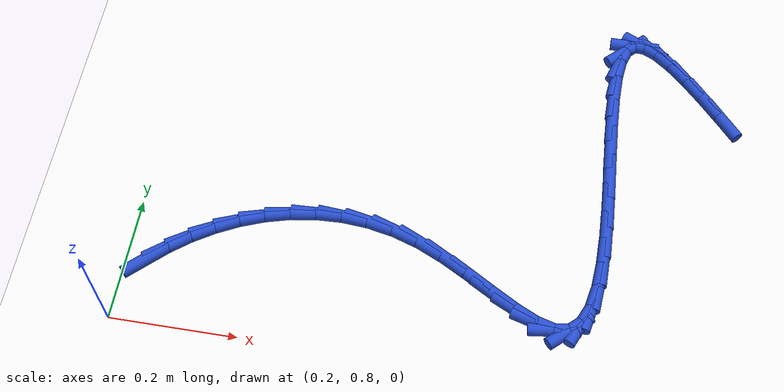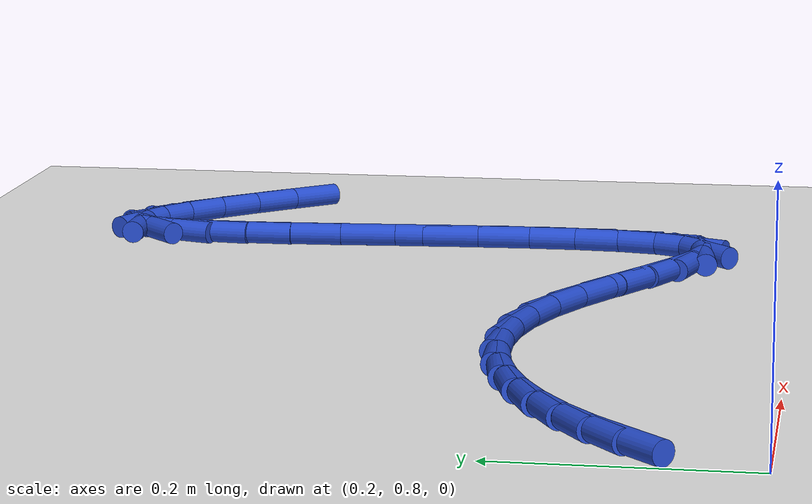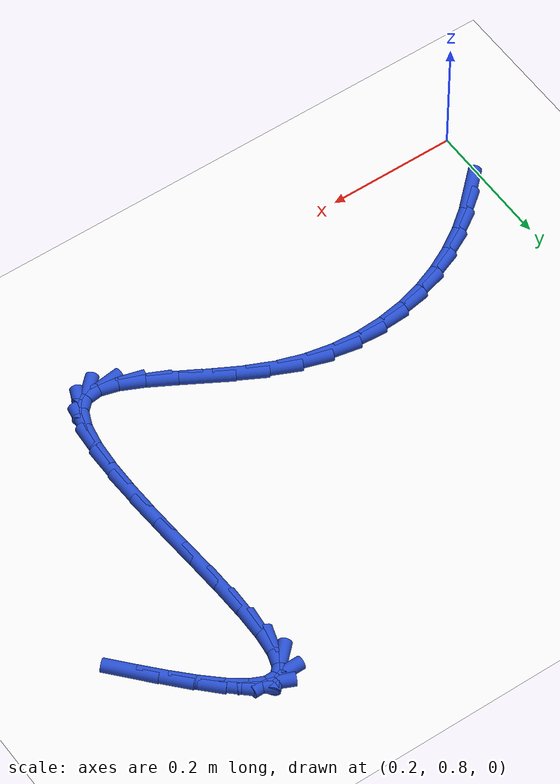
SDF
<sdf version="1.6">
 <world name="default">
  <model name="ground_plane">
   <static>1</static>
   <link name="link">
    <collision name="collision">
     <geometry><plane><normal>0 0 1</normal><size>100 100</size></plane></geometry>
     <surface><friction><ode><mu>100</mu><mu2>50</mu2></ode></friction></surface>
    </collision>
    <visual name="visual">
     <cast_shadows>0</cast_shadows>
     <geometry><plane><normal>0 0 1</normal><size>100 100</size></plane></geometry>
     <material>
      <script><uri>file://media/materials/scripts/gazebo.material</uri><name>Gazebo/WhiteGlow</name></script>
     </material>
    </visual>
   </link>
  </model>
  <model name="line">
   <link name="link_24">
    <pose>0.23262745834387805 0.8998733901806598 0.01 0 1.57 0.7599669564312679</pose>
    <collision name="collision">
     <geometry><cylinder><radius>0.01</radius><length>0.08</length></cylinder></geometry>
    </collision>
    <visual name="visual">
     <material>
      <script><name>Gazebo/Blue</name><uri>file://media/materials/scripts/gazebo.material</uri></script>
     </material>
     <geometry><cylinder><radius>0.01</radius><length>0.08</length></cylinder></geometry>
    </visual>
   </link>
   <link name="link_25">
    <pose>0.2601096772268201 0.9259921768534706 0.01 0 1.57 0.6659326873562499</pose>
    <collision name="collision">
     <geometry><cylinder><radius>0.01</radius><length>0.08</length></cylinder></geometry>
    </collision>
    <visual name="visual">
     <material>
      <script><name>Gazebo/Blue</name><uri>file://media/materials/scripts/gazebo.material</uri></script>
     </material>
     <geometry><cylinder><radius>0.01</radius><length>0.08</length></cylinder></geometry>
    </visual>
   </link>
   <link name="link_26">
    <pose>0.2904051819307278 0.9497939968531709 0.01 0 1.57 0.5713707651524974</pose>
    <collision name="collision">
     <geometry><cylinder><radius>0.01</radius><length>0.08</length></cylinder></geometry>
    </collision>
    <visual name="visual">
     <material>
      <script><name>Gazebo/Blue</name><uri>file://media/materials/scripts/gazebo.material</uri></script>
     </material>
     <geometry><cylinder><radius>0.01</radius><length>0.08</length></cylinder></geometry>
    </visual>
   </link>
   <link name="link_27">
    <pose>0.3232437256136845 0.970906034011327 0.01 0 1.57 0.4748559088709287</pose>
    <collision name="collision">
     <geometry><cylinder><radius>0.01</radius><length>0.08</length></cylinder></geometry>
    </collision>
    <visual name="visual">
     <material>
      <script><name>Gazebo/Blue</name><uri>file://media/materials/scripts/gazebo.material</uri></script>
     </material>
     <geometry><cylinder><radius>0.01</radius><length>0.08</length></cylinder></geometry>
    </visual>
   </link>
   <link name="link_28">
    <pose>0.3583370568904822 0.9889471621230053 0.01 0 1.57 0.3750314027690819</pose>
    <collision name="collision">
     <geometry><cylinder><radius>0.01</radius><length>0.08</length></cylinder></geometry>
    </collision>
    <visual name="visual">
     <material>
      <script><name>Gazebo/Blue</name><uri>file://media/materials/scripts/gazebo.material</uri></script>
     </material>
     <geometry><cylinder><radius>0.01</radius><length>0.08</length></cylinder></geometry>
    </visual>
   </link>
   <link name="link_29">
    <pose>0.3953969243759126 1.0035362549832727 0.01 0 1.57 0.27083501432303775</pose>
    <collision name="collision">
     <geometry><cylinder><radius>0.01</radius><length>0.08</length></cylinder></geometry>
    </collision>
    <visual name="visual">
     <material>
      <script><name>Gazebo/Blue</name><uri>file://media/materials/scripts/gazebo.material</uri></script>
     </material>
     <geometry><cylinder><radius>0.01</radius><length>0.08</length></cylinder></geometry>
    </visual>
   </link>
   <link name="link_30">
    <pose>0.43413507668476786 1.014292186387196 0.01 0 1.57 0.16159719585058546</pose>
    <collision name="collision">
     <geometry><cylinder><radius>0.01</radius><length>0.08</length></cylinder></geometry>
    </collision>
    <visual name="visual">
     <material>
      <script><name>Gazebo/Blue</name><uri>file://media/materials/scripts/gazebo.material</uri></script>
     </material>
     <geometry><cylinder><radius>0.01</radius><length>0.08</length></cylinder></geometry>
    </visual>
   </link>
   <link name="link_31">
    <pose>0.4742632624318398 1.0208338301298416 0.01 0 1.57 0.047169240069005365</pose>
    <collision name="collision">
     <geometry><cylinder><radius>0.01</radius><length>0.08</length></cylinder></geometry>
    </collision>
    <visual name="visual">
     <material>
      <script><name>Gazebo/Blue</name><uri>file://media/materials/scripts/gazebo.material</uri></script>
     </material>
     <geometry><cylinder><radius>0.01</radius><length>0.08</length></cylinder></geometry>
    </visual>
   </link>
   <link name="link_32">
    <pose>0.5154932302319205 1.0227800600062762 0.01 0 1.57 -0.07195117491863527</pose>
    <collision name="collision">
     <geometry><cylinder><radius>0.01</radius><length>0.08</length></cylinder></geometry>
    </collision>
    <visual name="visual">
     <material>
      <script><name>Gazebo/Blue</name><uri>file://media/materials/scripts/gazebo.material</uri></script>
     </material>
     <geometry><cylinder><radius>0.01</radius><length>0.08</length></cylinder></geometry>
    </visual>
   </link>
   <link name="link_33">
    <pose>0.5575367286998016 1.0197497498115666 0.01 0 1.57 -0.1945528694359533</pose>
    <collision name="collision">
     <geometry><cylinder><radius>0.01</radius><length>0.08</length></cylinder></geometry>
    </collision>
    <visual name="visual">
     <material>
      <script><name>Gazebo/Blue</name><uri>file://media/materials/scripts/gazebo.material</uri></script>
     </material>
     <geometry><cylinder><radius>0.01</radius><length>0.08</length></cylinder></geometry>
    </visual>
   </link>
   <link name="link_34">
    <pose>0.6001055064502753 1.0113617733407794 0.01 0 1.57 -0.3187642740556319</pose>
    <collision name="collision">
     <geometry><cylinder><radius>0.01</radius><length>0.08</length></cylinder></geometry>
    </collision>
    <visual name="visual">
     <material>
      <script><name>Gazebo/Blue</name><uri>file://media/materials/scripts/gazebo.material</uri></script>
     </material>
     <geometry><cylinder><radius>0.01</radius><length>0.08</length></cylinder></geometry>
    </visual>
   </link>
   <link name="link_35">
    <pose>0.6429112991122647 0.9972350684060942 0.01 0 1.57 -0.43166994559678284</pose>
    <collision name="collision">
     <geometry><cylinder><radius>0.01</radius><length>0.08</length></cylinder></geometry>
    </collision>
    <visual name="visual">
     <material>
      <script><name>Gazebo/Blue</name><uri>file://media/materials/scripts/gazebo.material</uri></script>
     </material>
     <geometry><cylinder><radius>0.01</radius><length>0.08</length></cylinder></geometry>
    </visual>
   </link>
   <link name="link_36">
    <pose>0.6855423541859551 0.9775973386826077 0.01 0 1.57 -0.501572258225648</pose>
    <collision name="collision">
     <geometry><cylinder><radius>0.01</radius><length>0.08</length></cylinder></geometry>
    </collision>
    <visual name="visual">
     <material>
      <script><name>Gazebo/Blue</name><uri>file://media/materials/scripts/gazebo.material</uri></script>
     </material>
     <geometry><cylinder><radius>0.01</radius><length>0.08</length></cylinder></geometry>
    </visual>
   </link>
   <link name="link_37">
    <pose>0.7271610073528116 0.954775927531406 0.01 0 1.57 -0.529588721069814</pose>
    <collision name="collision">
     <geometry><cylinder><radius>0.01</radius><length>0.08</length></cylinder></geometry>
    </collision>
    <visual name="visual">
     <material>
      <script><name>Gazebo/Blue</name><uri>file://media/materials/scripts/gazebo.material</uri></script>
     </material>
     <geometry><cylinder><radius>0.01</radius><length>0.08</length></cylinder></geometry>
    </visual>
   </link>
   <link name="link_38">
    <pose>0.7668378383802582 0.931550512224219 0.01 0 1.57 -0.5154100114677903</pose>
    <collision name="collision">
     <geometry><cylinder><radius>0.01</radius><length>0.08</length></cylinder></geometry>
    </collision>
    <visual name="visual">
     <material>
      <script><name>Gazebo/Blue</name><uri>file://media/materials/scripts/gazebo.material</uri></script>
     </material>
     <geometry><cylinder><radius>0.01</radius><length>0.08</length></cylinder></geometry>
    </visual>
   </link>
   <link name="link_39">
    <pose>0.8036434270357179 0.9107007700327749 0.01 0 1.57 -0.443869790424349</pose>
    <collision name="collision">
     <geometry><cylinder><radius>0.01</radius><length>0.08</length></cylinder></geometry>
    </collision>
    <visual name="visual">
     <material>
      <script><name>Gazebo/Blue</name><uri>file://media/materials/scripts/gazebo.material</uri></script>
     </material>
     <geometry><cylinder><radius>0.01</radius><length>0.08</length></cylinder></geometry>
    </visual>
   </link>
   <link name="link_40">
    <pose>0.8366483530866142 0.8950063782288026 0.01 0 1.57 -0.2678328847738722</pose>
    <collision name="collision">
     <geometry><cylinder><radius>0.01</radius><length>0.08</length></cylinder></geometry>
    </collision>
    <visual name="visual">
     <material>
      <script><name>Gazebo/Blue</name><uri>file://media/materials/scripts/gazebo.material</uri></script>
     </material>
     <geometry><cylinder><radius>0.01</radius><length>0.08</length></cylinder></geometry>
    </visual>
   </link>
   <link name="link_41">
    <pose>0.86492319630037 0.8872470140840307 0.01 0 1.57 0.1298252275558873</pose>
    <collision name="collision">
     <geometry><cylinder><radius>0.01</radius><length>0.08</length></cylinder></geometry>
    </collision>
    <visual name="visual">
     <material>
      <script><name>Gazebo/Blue</name><uri>file://media/materials/scripts/gazebo.material</uri></script>
     </material>
     <geometry><cylinder><radius>0.01</radius><length>0.08</length></cylinder></geometry>
    </visual>
   </link>
   <link name="link_42">
    <pose>0.8875395206252846 0.8901997914902295 0.01 0 1.57 0.7476197615415479</pose>
    <collision name="collision">
     <geometry><cylinder><radius>0.01</radius><length>0.08</length></cylinder></geometry>
    </collision>
    <visual name="visual">
     <material>
      <script><name>Gazebo/Blue</name><uri>file://media/materials/scripts/gazebo.material</uri></script>
     </material>
     <geometry><cylinder><radius>0.01</radius><length>0.08</length></cylinder></geometry>
    </visual>
   </link>
   <link name="link_43">
    <pose>0.9040163285786222 0.9054764338221941 0.01 0 1.57 1.173080980686533</pose>
    <collision name="collision">
     <geometry><cylinder><radius>0.01</radius><length>0.08</length></cylinder></geometry>
    </collision>
    <visual name="visual">
     <material>
      <script><name>Gazebo/Blue</name><uri>file://media/materials/scripts/gazebo.material</uri></script>
     </material>
     <geometry><cylinder><radius>0.01</radius><length>0.08</length></cylinder></geometry>
    </visual>
   </link>
   <link name="link_44">
    <pose>0.9150262153935563 0.9316840374403654 0.01 0 1.57 1.39131081522536</pose>
    <collision name="collision">
     <geometry><cylinder><radius>0.01</radius><length>0.08</length></cylinder></geometry>
    </collision>
    <visual name="visual">
     <material>
      <script><name>Gazebo/Blue</name><uri>file://media/materials/scripts/gazebo.material</uri></script>
     </material>
     <geometry><cylinder><radius>0.01</radius><length>0.08</length></cylinder></geometry>
    </visual>
   </link>
   <link name="link_45">
    <pose>0.9214251714929196 0.9669520308649239 0.01 0 1.57 1.5086026866258215</pose>
    <collision name="collision">
     <geometry><cylinder><radius>0.01</radius><length>0.08</length></cylinder></geometry>
    </collision>
    <visual name="visual">
     <material>
      <script><name>Gazebo/Blue</name><uri>file://media/materials/scripts/gazebo.material</uri></script>
     </material>
     <geometry><cylinder><radius>0.01</radius><length>0.08</length></cylinder></geometry>
    </visual>
   </link>
   <link name="link_46">
    <pose>0.9240691872995446 1.0094098426160492 0.01 0 1.57 -1.5654604678844504</pose>
    <collision name="collision">
     <geometry><cylinder><radius>0.01</radius><length>0.08</length></cylinder></geometry>
    </collision>
    <visual name="visual">
     <material>
      <script><name>Gazebo/Blue</name><uri>file://media/materials/scripts/gazebo.material</uri></script>
     </material>
     <geometry><cylinder><radius>0.01</radius><length>0.08</length></cylinder></geometry>
    </visual>
   </link>
   <link name="link_47">
    <pose>0.9238142532362632 1.0571869012139212 0.01 0 1.57 -1.5259681930906963</pose>
    <collision name="collision">
     <geometry><cylinder><radius>0.01</radius><length>0.08</length></cylinder></geometry>
    </collision>
    <visual name="visual">
     <material>
      <script><name>Gazebo/Blue</name><uri>file://media/materials/scripts/gazebo.material</uri></script>
     </material>
     <geometry><cylinder><radius>0.01</radius><length>0.08</length></cylinder></geometry>
    </visual>
   </link>
   <link name="link_48">
    <pose>0.9215163597259078 1.1084126351787202 0.01 0 1.57 -1.5048955061222342</pose>
    <collision name="collision">
     <geometry><cylinder><radius>0.01</radius><length>0.08</length></cylinder></geometry>
    </collision>
    <visual name="visual">
     <material>
      <script><name>Gazebo/Blue</name><uri>file://media/materials/scripts/gazebo.material</uri></script>
     </material>
     <geometry><cylinder><radius>0.01</radius><length>0.08</length></cylinder></geometry>
    </visual>
   </link>
   <link name="link_49">
    <pose>0.918031497191311 1.1612164730306254 0.01 0 1.57 -1.498256878310859</pose>
    <collision name="collision">
     <geometry><cylinder><radius>0.01</radius><length>0.08</length></cylinder></geometry>
    </collision>
    <visual name="visual">
     <material>
      <script><name>Gazebo/Blue</name><uri>file://media/materials/scripts/gazebo.material</uri></script>
     </material>
     <geometry><cylinder><radius>0.01</radius><length>0.08</length></cylinder></geometry>
    </visual>
   </link>
   <link name="link_50">
    <pose>0.9142156560553051 1.2137278432898178 0.01 0 1.57 -1.5055279262098844</pose>
    <collision name="collision">
     <geometry><cylinder><radius>0.01</radius><length>0.08</length></cylinder></geometry>
    </collision>
    <visual name="visual">
     <material>
      <script><name>Gazebo/Blue</name><uri>file://media/materials/scripts/gazebo.material</uri></script>
     </material>
     <geometry><cylinder><radius>0.01</radius><length>0.08</length></cylinder></geometry>
    </visual>
   </link>
   <link name="link_51">
    <pose>0.9109248267407226 1.2640761744764766 0.01 0 1.57 -1.529583821137753</pose>
    <collision name="collision">
     <geometry><cylinder><radius>0.01</radius><length>0.08</length></cylinder></geometry>
    </collision>
    <visual name="visual">
     <material>
      <script><name>Gazebo/Blue</name><uri>file://media/materials/scripts/gazebo.material</uri></script>
     </material>
     <geometry><cylinder><radius>0.01</radius><length>0.08</length></cylinder></geometry>
    </visual>
   </link>
   <link name="link_52">
    <pose>0.9090149996703953 1.3103908951107823 0.01 0 1.57 1.5627004572462482</pose>
    <collision name="collision">
     <geometry><cylinder><radius>0.01</radius><length>0.08</length></cylinder></geometry>
    </collision>
    <visual name="visual">
     <material>
      <script><name>Gazebo/Blue</name><uri>file://media/materials/scripts/gazebo.material</uri></script>
     </material>
     <geometry><cylinder><radius>0.01</radius><length>0.08</length></cylinder></geometry>
    </visual>
   </link>
   <link name="link_53">
    <pose>0.9093421652671563 1.3508014337129146 0.01 0 1.57 1.4663799651946237</pose>
    <collision name="collision">
     <geometry><cylinder><radius>0.01</radius><length>0.08</length></cylinder></geometry>
    </collision>
    <visual name="visual">
     <material>
      <script><name>Gazebo/Blue</name><uri>file://media/materials/scripts/gazebo.material</uri></script>
     </material>
     <geometry><cylinder><radius>0.01</radius><length>0.08</length></cylinder></geometry>
    </visual>
   </link>
   <link name="link_54">
    <pose>0.9127623139538374 1.3834372188030535 0.01 0 1.57 1.2606130804991729</pose>
    <collision name="collision">
     <geometry><cylinder><radius>0.01</radius><length>0.08</length></cylinder></geometry>
    </collision>
    <visual name="visual">
     <material>
      <script><name>Gazebo/Blue</name><uri>file://media/materials/scripts/gazebo.material</uri></script>
     </material>
     <geometry><cylinder><radius>0.01</radius><length>0.08</length></cylinder></geometry>
    </visual>
   </link>
   <link name="link_55">
    <pose>0.9201314361532713 1.4064276789013785 0.01 0 1.57 0.7622477372073089</pose>
    <collision name="collision">
     <geometry><cylinder><radius>0.01</radius><length>0.08</length></cylinder></geometry>
    </collision>
    <visual name="visual">
     <material>
      <script><name>Gazebo/Blue</name><uri>file://media/materials/scripts/gazebo.material</uri></script>
     </material>
     <geometry><cylinder><radius>0.01</radius><length>0.08</length></cylinder></geometry>
    </visual>
   </link>
   <link name="link_56">
    <pose>0.9322600594828168 1.41800734710478 0.01 0 1.57 0.008740368043914565</pose>
    <collision name="collision">
     <geometry><cylinder><radius>0.01</radius><length>0.08</length></cylinder></geometry>
    </collision>
    <visual name="visual">
     <material>
      <script><name>Gazebo/Blue</name><uri>file://media/materials/scripts/gazebo.material</uri></script>
     </material>
     <geometry><cylinder><radius>0.01</radius><length>0.08</length></cylinder></geometry>
    </visual>
   </link>
   <link name="link_57">
    <pose>0.9492040484138605 1.4181554475755194 0.01 0 1.57 -0.4357348969624494</pose>
    <collision name="collision">
     <geometry><cylinder><radius>0.01</radius><length>0.08</length></cylinder></geometry>
    </collision>
    <visual name="visual">
     <material>
      <script><name>Gazebo/Blue</name><uri>file://media/materials/scripts/gazebo.material</uri></script>
     </material>
     <geometry><cylinder><radius>0.01</radius><length>0.08</length></cylinder></geometry>
    </visual>
   </link>
   <link name="link_58">
    <pose>0.9703977532435921 1.4082880710202343 0.01 0 1.57 -0.6378004394428387</pose>
    <collision name="collision">
     <geometry><cylinder><radius>0.01</radius><length>0.08</length></cylinder></geometry>
    </collision>
    <visual name="visual">
     <material>
      <script><name>Gazebo/Blue</name><uri>file://media/materials/scripts/gazebo.material</uri></script>
     </material>
     <geometry><cylinder><radius>0.01</radius><length>0.08</length></cylinder></geometry>
    </visual>
   </link>
   <link name="link_59">
    <pose>0.9952570061976413 1.3898641197154311 0.01 0 1.57 -0.740181951555538</pose>
    <collision name="collision">
     <geometry><cylinder><radius>0.01</radius><length>0.08</length></cylinder></geometry>
    </collision>
    <visual name="visual">
     <material>
      <script><name>Gazebo/Blue</name><uri>file://media/materials/scripts/gazebo.material</uri></script>
     </material>
     <geometry><cylinder><radius>0.01</radius><length>0.08</length></cylinder></geometry>
    </visual>
   </link>
   <link name="link_60">
    <pose>1.0231976395016364 1.3643424959376165 0.01 0 1.57 -0.797127637485828</pose>
    <collision name="collision">
     <geometry><cylinder><radius>0.01</radius><length>0.08</length></cylinder></geometry>
    </collision>
    <visual name="visual">
     <material>
      <script><name>Gazebo/Blue</name><uri>file://media/materials/scripts/gazebo.material</uri></script>
     </material>
     <geometry><cylinder><radius>0.01</radius><length>0.08</length></cylinder></geometry>
    </visual>
   </link>
   <link name="link_61">
    <pose>1.0536354853812067 1.3331821019632952 0.01 0 1.57 -0.8295314068918879</pose>
    <collision name="collision">
     <geometry><cylinder><radius>0.01</radius><length>0.08</length></cylinder></geometry>
    </collision>
    <visual name="visual">
     <material>
      <script><name>Gazebo/Blue</name><uri>file://media/materials/scripts/gazebo.material</uri></script>
     </material>
     <geometry><cylinder><radius>0.01</radius><length>0.08</length></cylinder></geometry>
    </visual>
   </link>
   <link name="link_62">
    <pose>1.0859863760619806 1.2978418400689753 0.01 0 1.57 -0.8463957064891034</pose>
    <collision name="collision">
     <geometry><cylinder><radius>0.01</radius><length>0.08</length></cylinder></geometry>
    </collision>
    <visual name="visual">
     <material>
      <script><name>Gazebo/Blue</name><uri>file://media/materials/scripts/gazebo.material</uri></script>
     </material>
     <geometry><cylinder><radius>0.01</radius><length>0.08</length></cylinder></geometry>
    </visual>
   </link>
  </model>
 </world>
</sdf>
